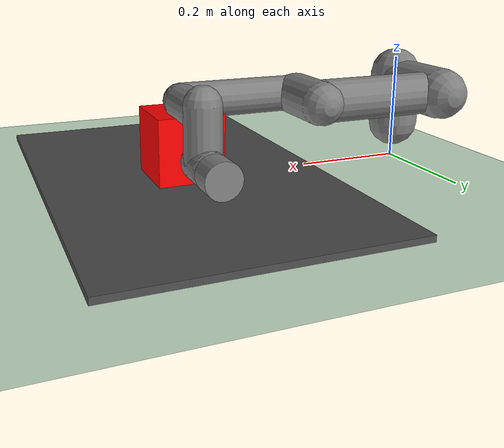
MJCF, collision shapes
<mujoco model="ur3e_workspace">
    <compiler angle="radian" autolimits="true"/>

    <option integrator="implicitfast" timestep="0.002"/>

    <visual>
        <global offwidth="640" offheight="480"/> <quality shadowsize="2048"/>
    </visual>

    <include file="ur3e/ur3e.xml"/>

    <worldbody>
        <light name="top_light" pos="0 0 3" dir="0 0 -1" directional="true" castshadow="true"/>
        <light name="table_light" pos="0.8 -0.8 2" dir="-0.4 0.4 -1" directional="false" diffuse="0.8 0.8 0.8"/>
        <camera name="realsense_d435" pos="0.45 -0.6 0.1" mode="fixed" euler="1.5708 0 0" fovy="69"/>

        <geom name="floor" type="plane" size="3 3 0.1" rgba="0.8 0.9 0.8 1" friction="1 0.005 0.0001"/>

        <body name="work_table" pos="0.45 0 0">
            <geom type="box" size="0.25 0.4 0.01" rgba="0.3 0.3 0.3 1"/>
        </body>

        <body name="target_object" pos="0.45 0 0.07">
            <geom name="target_geom"
                  type="box"
                  size="0.06 0.06 0.06"
                  rgba="1 0 0 1"
                  mass="0.5"
                  condim="4"
                  friction="0.8 0.005 0.0001"/>
        </body>
    </worldbody>

    <sensor>
        <force name="tcp_force" site="attachment_site"/>
        <torque name="tcp_torque" site="attachment_site"/>
    </sensor>
</mujoco>

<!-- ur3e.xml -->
<mujoco model="ur3e">
  <compiler angle="radian" meshdir="ur3e/assets" autolimits="true"/>

  <option integrator="implicitfast"/>

  <default>
    <default class="ur3e">
      <material specular="0.5" shininess="0.25"/>
      <joint axis="0 1 0" range="-6.28319 6.28319" armature="0.1"/>
      <general gaintype="fixed" biastype="affine" ctrlrange="-6.2831 6.2831"/>
      <default class="size2">
        <general  gainprm="1000" biasprm="0 -1000 -200" forcerange="-56 56"/>
      </default>
      <default class="size1">
        <default class="size1_limited">
          <joint range="-3.14159 3.14159"/>
          <general gainprm="500" biasprm="0 -500 -100" ctrlrange="-3.14159 3.14159" forcerange="-28 28"/>
        </default>
      </default>
      <default class="size0">
        <general gainprm="200" biasprm="0 -200 -40" forcerange="-12 12"/>
      </default>
      <default class="visual">
        <geom type="mesh" contype="0" conaffinity="0" group="2"/>
      </default>
      <default class="collision">
        <geom type="capsule" group="3"/>
        <default class="eef_collision">
          <geom type="cylinder"/>
        </default>
      </default>
      <site size="0.001" rgba="0.5 0.5 0.5 0.3" group="4"/>
    </default>
  </default>

  <asset>
    <material class="ur3e" name="black" rgba="0.033 0.033 0.033 1"/>
    <material class="ur3e" name="jointgray" rgba="0.278 0.278 0.278 1"/>
    <material class="ur3e" name="linkgray" rgba="0.82 0.82 0.82 1"/>
    <material class="ur3e" name="urblue" rgba="0.49 0.678 0.8 1"/>

    <mesh file="base_0.obj"/>
    <mesh file="base_1.obj"/>
    <mesh file="shoulder_0.obj"/>
    <mesh file="shoulder_1.obj"/>
    <mesh file="shoulder_2.obj"/>
    <mesh file="upperarm_0.obj"/>
    <mesh file="upperarm_1.obj"/>
    <mesh file="upperarm_2.obj"/>
    <mesh file="upperarm_3.obj"/>
    <mesh file="forearm_0.obj"/>
    <mesh file="forearm_1.obj"/>
    <mesh file="forearm_2.obj"/>
    <mesh file="forearm_3.obj"/>
    <mesh file="wrist1_0.obj"/>
    <mesh file="wrist1_1.obj"/>
    <mesh file="wrist1_2.obj"/>
    <mesh file="wrist2_0.obj"/>
    <mesh file="wrist2_1.obj"/>
    <mesh file="wrist2_2.obj"/>
    <mesh file="wrist3.obj"/>
  </asset>

  <worldbody>
    <light name="spotlight" mode="targetbodycom" target="wrist_3_link" pos="0 -1 2"/>
    <body name="base" childclass="ur3e">
      <inertial mass="2" pos="0 0 0" diaginertia="0.0030532 0.0030532 0.005625"/>
      <geom mesh="base_0" material="jointgray" class="visual"/>
      <geom mesh="base_1" material="black" class="visual"/>
      <body name="shoulder_link" pos="0 0 0.152">
        <inertial mass="2" pos="0 0 0" diaginertia="0.00809316 0.00809316 0.005625"/>
        <joint name="shoulder_pan_joint" class="size2" axis="0 0 1"/>
        <geom mesh="shoulder_0" material="urblue" class="visual"/>
        <geom mesh="shoulder_1" material="black" class="visual"/>
        <geom mesh="shoulder_2" material="jointgray" class="visual"/>
        <geom class="collision" size="0.047 0.05" pos="0 0 -0.032"/>
        <body name="upper_arm_link" pos="0 0.12 0" quat="1 0 1 0">
          <inertial mass="3.42" pos="0 0 0.122" diaginertia="0.0217285 0.0217285 0.00961875"/>
          <joint name="shoulder_lift_joint" class="size2"/>
          <geom mesh="upperarm_0" material="black" class="visual"/>
          <geom mesh="upperarm_1" material="urblue" class="visual"/>
          <geom mesh="upperarm_2" material="jointgray" class="visual"/>
          <geom mesh="upperarm_3" material="linkgray" class="visual"/>
          <geom class="collision" size="0.046 0.06" pos="0 -0.04 0" quat="1 1 0 0"/>
          <geom class="collision" size="0.038 0.11" pos="0 0 0.12"/>
          <body name="forearm_link" pos="0 -0.093 0.244">
            <inertial mass="1.26" pos="0 0 0.10625" diaginertia="0.00654457 0.00654457 0.00354375"/>
            <joint name="elbow_joint" class="size1_limited"/>
            <geom mesh="forearm_0" material="urblue" class="visual"/>
            <geom mesh="forearm_1" material="linkgray" class="visual"/>
            <geom mesh="forearm_2" material="black" class="visual"/>
            <geom mesh="forearm_3" material="jointgray" class="visual"/>
            <geom class="collision" size="0.038 0.048" pos="0 0.062 0" quat="1 1 0 0"/>
            <geom class="collision" size="0.032 0.103" pos="0 0 0.11"/>
            <body name="wrist_1_link" pos="0.0005 0 0.2125" quat="1 0 1 0">
              <inertial mass="0.8" pos="0 0.104 0" diaginertia="0.00225 0.002085 0.002085"/>
              <joint name="wrist_1_joint" class="size0"/>
              <geom mesh="wrist1_0" material="jointgray" class="visual"/>
              <geom mesh="wrist1_1" material="urblue" class="visual"/>
              <geom mesh="wrist1_2" material="black" class="visual"/>
              <geom class="collision" size="0.032 0.05" pos="0 0.045 0" quat="1 1 0 0"/>
              <body name="wrist_2_link" pos="0 0.104 0">
                <inertial mass="0.8" pos="0 0 0.085" diaginertia="0.00225 0.002085 0.002085"/>
                <joint name="wrist_2_joint" axis="0 0 1"/>
                <geom mesh="wrist2_0" material="jointgray" class="visual"/>
                <geom mesh="wrist2_1" material="black" class="visual"/>
                <geom mesh="wrist2_2" material="urblue" class="visual"/>
                <geom class="collision" size="0.032 0.05" pos="0 0 0.035"/>
                <geom class="collision" size="0.032 0.027" pos="0 0.01 0.085" quat="1 1 0 0"/>
                <body name="wrist_3_link" pos="0 0 0.085">
                  <inertial mass="0.35" pos="0 0.0715 0" quat="1 0 0 1" diaginertia="0.0001792 0.000136267 0.000136267"/>
                  <joint name="wrist_3_joint"/>
                  <geom mesh="wrist3" material="linkgray" class="visual"/>
                  <geom class="eef_collision" size="0.032 0.023" pos="0 0.07 0" quat="1 1 0 0"/>
                  <site name="attachment_site" pos="0 0.09215 0" quat="-1 1 0 0"/>
                </body>
              </body>
            </body>
          </body>
        </body>
      </body>
    </body>
  </worldbody>

  <actuator>
    <general class="size2" name="shoulder_pan" joint="shoulder_pan_joint"/>
    <general class="size2" name="shoulder_lift" joint="shoulder_lift_joint"/>
    <general class="size1_limited" name="elbow" joint="elbow_joint"/>
    <general class="size0" name="wrist_1" joint="wrist_1_joint"/>
    <general class="size0" name="wrist_2" joint="wrist_2_joint"/>
    <general class="size0" name="wrist_3" joint="wrist_3_joint"/>
  </actuator>

  <keyframe>
    <key name="home" qpos="-1.5708 -1.5708 1.5708 -1.5708 -1.5708 0" ctrl="-1.5708 -1.5708 1.5708 -1.5708 -1.5708 0"/>
  </keyframe>
</mujoco>
